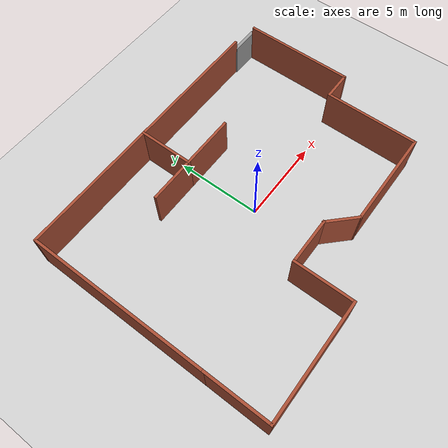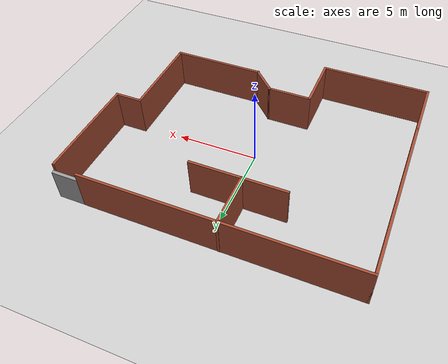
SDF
<sdf version="1.6">
 <world name="default">
  <light name="sun" type="directional">
   <pose>0 0 10 0 -0 0</pose>
   <diffuse>0.8 0.8 0.8 1</diffuse>
   <specular>0.2 0.2 0.2 1</specular>
   <attenuation>
    <range>1000</range>
    <constant>0.9</constant>
    <linear>0.01</linear>
    <quadratic>0.001</quadratic>
   </attenuation>
   <direction>-0.5 0.1 -0.9</direction>
  </light>
  <model name="ground_plane">
   <static>1</static>
   <link name="link">
    <collision name="collision">
     <geometry><plane><normal>0 0 1</normal><size>100 100</size></plane></geometry>
     <surface>
      <contact><collide_bitmask>65535</collide_bitmask></contact>
      <friction><ode><mu>100</mu><mu2>50</mu2></ode></friction>
     </surface>
    </collision>
    <visual name="visual">
     <cast_shadows>0</cast_shadows>
     <geometry><plane><normal>0 0 1</normal><size>100 100</size></plane></geometry>
     <material>
      <script><uri>file://media/materials/scripts/gazebo.material</uri><name>Gazebo/Grey</name></script>
     </material>
    </visual>
   </link>
  </model>
  <gravity>0 0 -9.8</gravity>
  <magnetic_field>6e-06 2.3e-05 -4.2e-05</magnetic_field>
  <atmosphere type="adiabatic"/>
  <physics name="default_physics" default="0" type="ode">
   <max_step_size>0.001</max_step_size>
   <real_time_factor>1</real_time_factor>
   <real_time_update_rate>1000</real_time_update_rate>
  </physics>
  <scene><ambient>0.4 0.4 0.4 1</ambient><background>0.7 0.7 0.7 1</background><shadows>1</shadows></scene>
  <spherical_coordinates>
   <surface_model>EARTH_WGS84</surface_model>
   <latitude_deg>0</latitude_deg>
   <longitude_deg>0</longitude_deg>
   <elevation>0</elevation>
   <heading_deg>0</heading_deg>
  </spherical_coordinates>
  <model name="mybuilding">
   <pose>0.162452 -0.092688 0 0 -0 0</pose>
   <link name="Door_0">
    <collision name="Door_0_Collision">
     <geometry><box><size>1.70911 0.2 2</size></box></geometry>
     <pose>0 0 1 0 -0 0</pose>
    </collision>
    <visual name="Door_0_Visual">
     <pose>0 0 1 0 -0 0</pose>
     <geometry><box><size>1.70911 0.2 2</size></box></geometry>
     <material>
      <script><uri>file://media/materials/scripts/gazebo.material</uri><name>Gazebo/Grey</name></script>
     </material>
    </visual>
    <pose>8.10021 6.93466 0 0 -0 0</pose>
   </link>
   <link name="Wall_10">
    <collision name="Wall_10_Collision">
     <geometry><box><size>2.75 0.15 2.5</size></box></geometry>
     <pose>0 0 1.25 0 -0 0</pose>
    </collision>
    <visual name="Wall_10_Visual">
     <pose>0 0 1.25 0 -0 0</pose>
     <geometry><box><size>2.75 0.15 2.5</size></box></geometry>
     <material>
      <script><uri>file://media/materials/scripts/gazebo.material</uri><name>Gazebo/Bricks</name></script>
      <ambient>1 1 1 1</ambient>
     </material>
     <meta><layer>0</layer></meta>
    </visual>
    <pose>-0.954074 -3.63104 0 0 -0 0</pose>
   </link>
   <link name="Wall_12">
    <collision name="Wall_12_Collision">
     <geometry><box><size>5.75 0.15 2.5</size></box></geometry>
     <pose>0 0 1.25 0 -0 0</pose>
    </collision>
    <visual name="Wall_12_Visual">
     <pose>0 0 1.25 0 -0 0</pose>
     <geometry><box><size>5.75 0.15 2.5</size></box></geometry>
     <material>
      <script><uri>file://media/materials/scripts/gazebo.material</uri><name>Gazebo/Bricks</name></script>
      <ambient>1 1 1 1</ambient>
     </material>
     <meta><layer>0</layer></meta>
    </visual>
    <pose>4.45407 -4.93919 0 0 -0 0</pose>
   </link>
   <link name="Wall_13">
    <collision name="Wall_13_Collision">
     <geometry><box><size>5.5 0.15 2.5</size></box></geometry>
     <pose>0 0 1.25 0 -0 0</pose>
    </collision>
    <visual name="Wall_13_Visual">
     <pose>0 0 1.25 0 -0 0</pose>
     <geometry><box><size>5.5 0.15 2.5</size></box></geometry>
     <material>
      <script><uri>file://media/materials/scripts/gazebo.material</uri><name>Gazebo/Bricks</name></script>
      <ambient>1 1 1 1</ambient>
     </material>
     <meta><layer>0</layer></meta>
    </visual>
    <pose>7.25407 -2.26419 0 0 -0 1.5708</pose>
   </link>
   <link name="Wall_14">
    <collision name="Wall_14_Collision">
     <geometry><box><size>1.75 0.15 2.5</size></box></geometry>
     <pose>0 0 1.25 0 -0 0</pose>
    </collision>
    <visual name="Wall_14_Visual">
     <pose>0 0 1.25 0 -0 0</pose>
     <geometry><box><size>1.75 0.15 2.5</size></box></geometry>
     <material>
      <script><uri>file://media/materials/scripts/gazebo.material</uri><name>Gazebo/Bricks</name></script>
      <ambient>1 1 1 1</ambient>
     </material>
     <meta><layer>0</layer></meta>
    </visual>
    <pose>8.05407 0.410812 0 0 -0 0</pose>
   </link>
   <link name="Wall_15">
    <collision name="Wall_15_Collision">
     <geometry><box><size>6.5 0.15 2.5</size></box></geometry>
     <pose>0 0 1.25 0 -0 0</pose>
    </collision>
    <visual name="Wall_15_Visual">
     <pose>0 0 1.25 0 -0 0</pose>
     <geometry><box><size>6.5 0.15 2.5</size></box></geometry>
     <material>
      <script><uri>file://media/materials/scripts/gazebo.material</uri><name>Gazebo/Bricks</name></script>
      <ambient>1 1 1 1</ambient>
     </material>
     <meta><layer>0</layer></meta>
    </visual>
    <pose>8.85407 3.58581 0 0 -0 1.5708</pose>
   </link>
   <link name="Wall_17">
    <collision name="Wall_17_Collision">
     <geometry><box><size>16.25 0.15 2.5</size></box></geometry>
     <pose>0 0 1.25 0 -0 0</pose>
    </collision>
    <visual name="Wall_17_Visual">
     <pose>0 0 1.25 0 -0 0</pose>
     <geometry><box><size>16.25 0.15 2.5</size></box></geometry>
     <material>
      <script><uri>file://media/materials/scripts/gazebo.material</uri><name>Gazebo/Bricks</name></script>
      <ambient>1 1 1 1</ambient>
     </material>
     <meta><layer>0</layer></meta>
    </visual>
    <pose>-0.804074 6.96896 0 0 -0 0</pose>
   </link>
   <link name="Wall_19">
    <collision name="Wall_19_Collision">
     <geometry><box><size>2 0.15 2.5</size></box></geometry>
     <pose>0 0 1.25 0 -0 0</pose>
    </collision>
    <visual name="Wall_19_Visual">
     <pose>0 0 1.25 0 -0 0</pose>
     <geometry><box><size>2 0.15 2.5</size></box></geometry>
     <material>
      <script><uri>file://media/materials/scripts/gazebo.material</uri><name>Gazebo/Bricks</name></script>
      <ambient>1 1 1 1</ambient>
     </material>
     <meta><layer>0</layer></meta>
    </visual>
    <pose>1 -4.28511 0 0 0 -0.785398</pose>
   </link>
   <link name="Wall_21">
    <collision name="Wall_21_Collision">
     <geometry><box><size>3.25 0.15 2.5</size></box></geometry>
     <pose>0 0 1.25 0 -0 0</pose>
    </collision>
    <visual name="Wall_21_Visual">
     <pose>0 0 1.25 0 -0 0</pose>
     <geometry><box><size>3.25 0.15 2.5</size></box></geometry>
     <material>
      <script><uri>file://media/materials/scripts/gazebo.material</uri><name>Gazebo/Bricks</name></script>
      <ambient>1 1 1 1</ambient>
     </material>
     <meta><layer>0</layer></meta>
    </visual>
    <pose>-0.941556 5.43104 0 0 0 -1.5708</pose>
   </link>
   <link name="Wall_22">
    <collision name="Wall_22_Collision">
     <geometry><box><size>2.75 0.15 2.5</size></box></geometry>
     <pose>0 0 1.25 0 -0 0</pose>
    </collision>
    <visual name="Wall_22_Visual">
     <pose>0 0 1.25 0 -0 0</pose>
     <geometry><box><size>2.75 0.15 2.5</size></box></geometry>
     <material>
      <script><uri>file://media/materials/scripts/gazebo.material</uri><name>Gazebo/Bricks</name></script>
      <ambient>1 1 1 1</ambient>
     </material>
     <meta><layer>0</layer></meta>
    </visual>
    <pose>-2.24156 3.88104 0 0 -0 3.14159</pose>
   </link>
   <link name="Wall_24">
    <collision name="Wall_24_Collision">
     <geometry><box><size>3.25 0.15 2.5</size></box></geometry>
     <pose>0 0 1.25 0 -0 0</pose>
    </collision>
    <visual name="Wall_24_Visual">
     <pose>0 0 1.25 0 -0 0</pose>
     <geometry><box><size>3.25 0.15 2.5</size></box></geometry>
     <material>
      <script><uri>file://media/materials/scripts/gazebo.material</uri><name>Gazebo/Bricks</name></script>
      <ambient>1 1 1 1</ambient>
     </material>
     <meta><layer>0</layer></meta>
    </visual>
    <pose>0.608444 3.88104 0 0 -0 0</pose>
   </link>
   <link name="Wall_5">
    <collision name="Wall_5_Collision">
     <geometry><box><size>10.5 0.15 2.5</size></box></geometry>
     <pose>0 0 1.25 0 -0 0</pose>
    </collision>
    <visual name="Wall_5_Visual">
     <pose>0 0 1.25 0 -0 0</pose>
     <geometry><box><size>10.5 0.15 2.5</size></box></geometry>
     <material>
      <script><uri>file://media/materials/scripts/gazebo.material</uri><name>Gazebo/Bricks</name></script>
      <ambient>1 1 1 1</ambient>
     </material>
     <meta><layer>0</layer></meta>
    </visual>
    <pose>-8.85407 1.79396 0 0 0 -1.5708</pose>
   </link>
   <link name="Wall_7">
    <collision name="Wall_7_Collision">
     <geometry><box><size>3.75 0.15 2.5</size></box></geometry>
     <pose>0 0 1.25 0 -0 0</pose>
    </collision>
    <visual name="Wall_7_Visual">
     <pose>0 0 1.25 0 -0 0</pose>
     <geometry><box><size>3.75 0.15 2.5</size></box></geometry>
     <material>
      <script><uri>file://media/materials/scripts/gazebo.material</uri><name>Gazebo/Bricks</name></script>
      <ambient>1 1 1 1</ambient>
     </material>
     <meta><layer>0</layer></meta>
    </visual>
    <pose>-8.85407 -5.18104 0 0 0 -1.5708</pose>
   </link>
   <link name="Wall_8">
    <collision name="Wall_8_Collision">
     <geometry><box><size>6.75 0.15 2.5</size></box></geometry>
     <pose>0 0 1.25 0 -0 0</pose>
    </collision>
    <visual name="Wall_8_Visual">
     <pose>0 0 1.25 0 -0 0</pose>
     <geometry><box><size>6.75 0.15 2.5</size></box></geometry>
     <material>
      <script><uri>file://media/materials/scripts/gazebo.material</uri><name>Gazebo/Bricks</name></script>
      <ambient>1 1 1 1</ambient>
     </material>
     <meta><layer>0</layer></meta>
    </visual>
    <pose>-5.55407 -6.98104 0 0 -0 0</pose>
   </link>
   <link name="Wall_9">
    <collision name="Wall_9_Collision">
     <geometry><box><size>3.5 0.15 2.5</size></box></geometry>
     <pose>0 0 1.25 0 -0 0</pose>
    </collision>
    <visual name="Wall_9_Visual">
     <pose>0 0 1.25 0 -0 0</pose>
     <geometry><box><size>3.5 0.15 2.5</size></box></geometry>
     <material>
      <script><uri>file://media/materials/scripts/gazebo.material</uri><name>Gazebo/Bricks</name></script>
      <ambient>1 1 1 1</ambient>
     </material>
     <meta><layer>0</layer></meta>
    </visual>
    <pose>-2.25407 -5.30604 0 0 -0 1.5708</pose>
   </link>
   <static>1</static>
  </model>
 </world>
</sdf>
